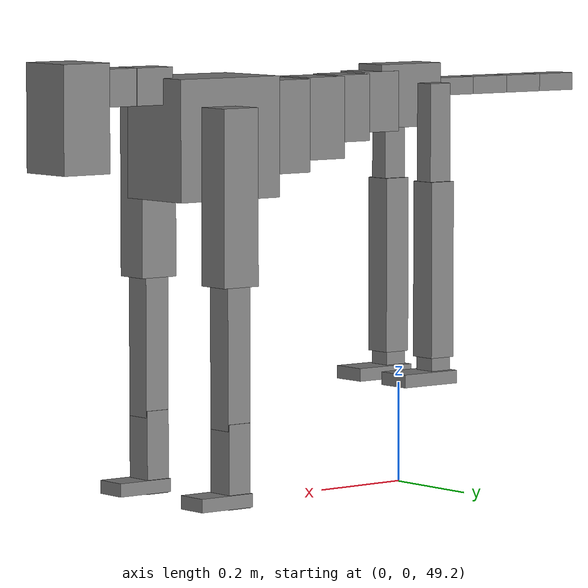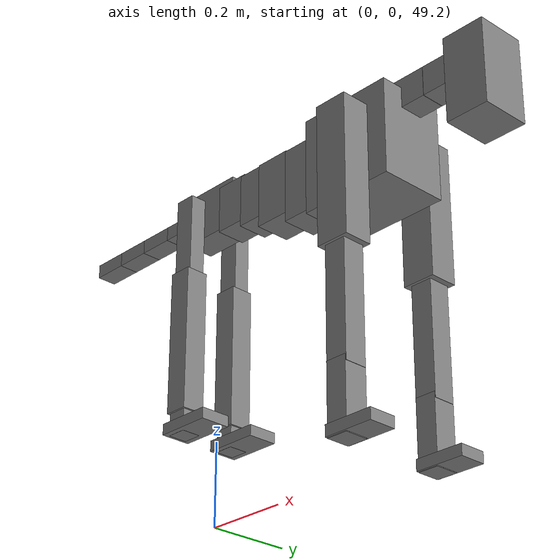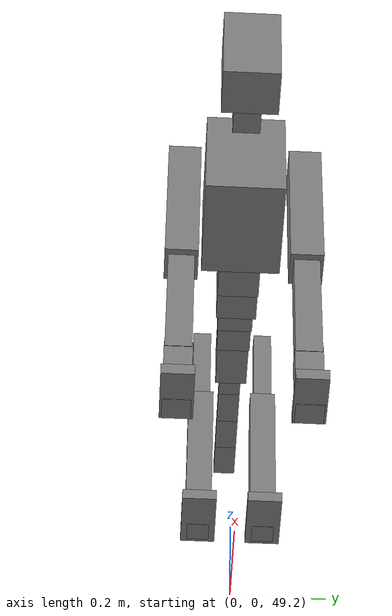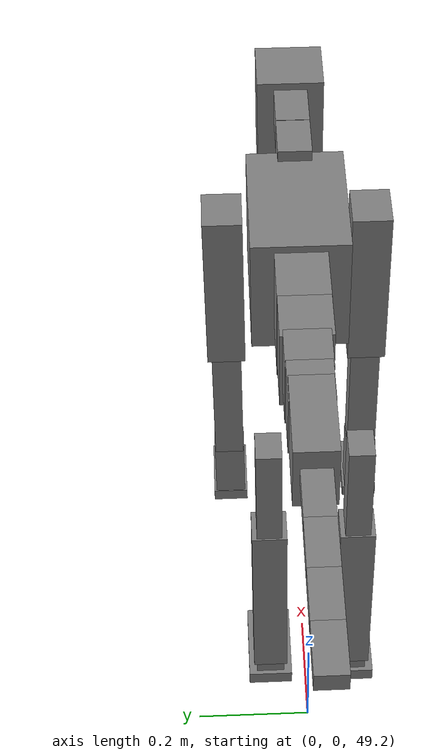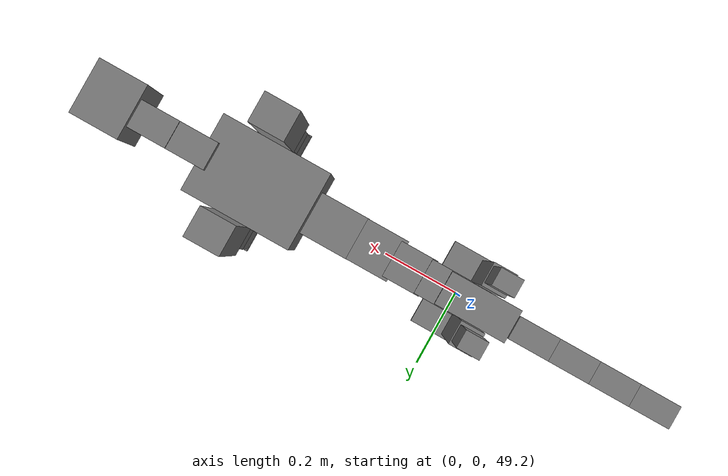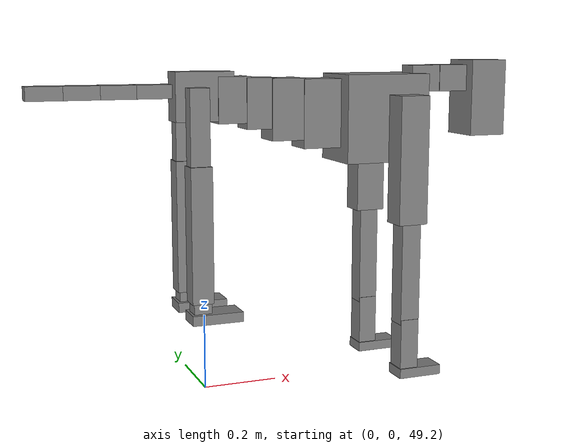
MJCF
<mujoco model="dog">

    <default>
        <joint armature="0.02" stiffness="1" damping="0.2" limited="true"/>
        <geom condim="3" friction="1 0.05 0.05" margin="0.01"/>
        <motor ctrllimited="true" ctrlrange="-1.0 1.0" forcelimited="true" gear="50"/>
    </default>

    <compiler inertiafromgeom="true" angle="radian"/>

    <option timestep="0.016" iterations="50" tolerance="1e-10" solver="Newton" jacobian="dense" cone="pyramidal"/>

    <size nconmax="20000" njmax="60000" nstack="5000000"/>
    <visual>
        <map force="0.1" zfar="30"/>
        <rgba haze="0.15 0.25 0.35 1"/>
        <quality shadowsize="2048"/>
        <global offwidth="800" offheight="800"/>
    </visual>

    <asset>
        <texture type="skybox" builtin="gradient" rgb1="0.3 0.5 0.7" rgb2="0 0 0" width="512" height="512"/>
        <texture name="texplane" type="2d" builtin="checker" rgb1=".2 .3 .4" rgb2=".1 0.15 0.2" width="512" height="512"
                 mark="cross" markrgb=".8 .8 .8"/>
        <texture name="texgeom" type="cube" builtin="flat" mark="cross" width="127" height="1278" rgb1="0.8 0.6 0.4"
                 rgb2="0.8 0.6 0.4" markrgb="1 1 1" random="0.01"/>

        <material name="matplane" reflectance="0.3" texture="texplane" texrepeat="1 1" texuniform="true"/>
        <material name="matgeom" texture="texgeom" texuniform="true" rgba="0.8 0.6 .4 1"/>
    </asset>

    <worldbody>
        <geom name="floor" pos="0 0 0" size="0 0 .25" type="plane" material="matplane" condim="3"/>

        <light directional="false" diffuse=".2 .2 .2" specular="0 0 0" pos="0 0 5" dir="0 0 -1" castshadow="false"/>
        <light mode="targetbodycom" target="torso" directional="false" diffuse=".8 .8 .8" specular="0.3 0.3 0.3"
               pos="0 0 4.0" dir="0 0 -1"/>

        <body name="root" pos="0 0 50">
            <freejoint name="root_1"/>
            <geom type="box" pos="0 0 -0.02" size="0.0774  0.0358  0.063" density="2030"/>

            <body name="spine1" pos="0.054 0 0">
                <joint name="spine1_y" axis="0 1 0" range="0 0.7" limited="true"/>
                <geom type="box" pos="0.02375 0 -0.03" size="0.04375  0.0375  0.05985" density="2030"/>

                <body name="spine2" pos="0.0612 0 0">
                    <joint name="spine2_y" axis="0 1 0" range="-0.15 0.15" limited="true"/>
                    <geom type="box" pos="0.03555  0  -0.04" size="0.04055  0.039  0.06615" density="2030"/>

                    <body name="spine3" pos="0.0730 0 0">
                        <joint name="spine3_y" axis="0 1 0" range="-0.15 0.15" limited="true"/>
                        <geom type="box" pos="0.03555  0  -0.057" size="0.04555  0.0445  0.081" density="2030"/>

                        <body name="spine4" pos="0.0780 0 0">
                            <joint name="spine4_y" axis="0 1 0" range="-0.15 0.15" limited="true"/>
                            <geom type="box" pos="0.05265  0  -0.07" size="0.05265  0.045  0.09135" density="2030"/>

                            <body name="torso" pos="0.1082 0 0">
                                <joint name="torso_y" axis="0 1 0" range="-0.15 0.15" limited="true"/>
                                <geom type="box" pos="0.11925  0  -0.085" size="0.11925  0.085  0.11745"
                                      density="2030"/>

                                <body name="neck1" pos="0.2160  0   0.0180">
                                    <joint name="neck1_y" axis="0 1 0" range="-1.2  -1" limited="true"/>
                                    <geom type="box" pos="0.0423  0  0" size="0.0423  0.03  0.036" density="2325"/>

                                    <body name="neck2" pos="0.0853  0  0">
                                        <joint name="neck2_y" axis="0 1 0" range="0.1  0" limited="true"/>
                                        <geom type="box" pos="0.0423  0  0" size="0.0423  0.03  0.036" density="2325"/>

                                        <body name="head" pos="0.0853  0  0">
                                            <joint name="head_y" axis="0 1 0" range="-0.3  -0.2" limited="true"/>
                                            <geom type="box" pos="0.0531  0  -0.055" size="0.0531  0.06  0.1044"
                                                  density="4030"/>

                                        </body>
                                    </body>
                                </body>

                                <body name="front_shoulder" pos="0.156  0   -0.0480">
                                    <joint name="front_shoulder_y" axis="0 1 0" range="-1 1.5" limited="true"/>
                                    <geom type="box" pos="0 0.13 -0.1438" size="0.0410  0.0350  0.1705" density="1158"/>
                                    <geom type="box" pos="0 -0.13 -0.1438" size="0.0410  0.0350  0.1705"
                                          density="1158"/>

                                    <body name="front_elbow" pos="0  0  -0.2876">
                                        <joint name="front_elbow_y" axis="0 1 0" range="-2 0" limited="true"/>
                                        <geom type="box" pos="0 0.13 -0.1507" size="0.0268  0.0274  0.1507"
                                              density="1081"/>
                                        <geom type="box" pos="0 -0.13 -0.1507" size="0.0268  0.0274  0.1507"
                                              density="1081"/>

                                        <body name="front_wrist" pos="0  0  -0.3013">
                                            <joint name="front_wrist_y" axis="0 1 0" range="-0.2 0" limited="true"/>
                                            <geom type="box" pos="0 0.13 -0.0688" size="0.0258  0.0287  0.0820"
                                                  density="1664"/>
                                            <geom type="box" pos="0 -0.13 -0.0688" size="0.0258  0.0287  0.0820"
                                                  density="1664"/>

                                            <body name="front_finger_end" pos="0  0  -0.1376">
                                                <joint name="front_finger_y" axis="0 1 0" range="-0.4 1"
                                                       limited="true"/>
                                                <geom type="box" pos="0.0331  0.13  0.0018"
                                                      size="0.0606  0.0331  0.0132" density="1515"/>
                                                <geom type="box" pos="0.0331  -0.13  0.0018"
                                                      size="0.0606  0.0331  0.0132" density="1515"/>

                                            </body>

                                        </body>
                                    </body>
                                </body>

                            </body>
                        </body>
                    </body>
                </body>
            </body>

            <body name="back_hip" pos="-0.03 0 -0.018">
                <joint name="back_hip_y" axis="0 1 0" range="-1.5 0.3" limited="true"/>
                <geom type="box" pos="0 0.07 -0.0943" size="0.0257  0.0201  0.1171" density="1154"/>
                <geom type="box" pos="0 -0.07 -0.0943" size="0.0257  0.0201  0.1171" density="1154"/>

                <body name="back_knee" pos="0  0  -0.1885">
                    <joint name="back_knee_y" axis="0 1 0" range="0 2.8" limited="true"/>
                    <geom type="box" pos="0 0.07 -0.1603" size="0.0284  0.0280  0.1759" density="1227"/>
                    <geom type="box" pos="0 -0.07 -0.1603" size="0.0284  0.0280  0.1759" density="1227"/>

                    <body name="back_ankle" pos="0  0  -0.3206">
                        <joint name="back_ankle_y" axis="0 1 0" range="-2.2 0" limited="true"/>
                        <geom type="box" pos="0 0.07 -0.0286" size="0.0234  0.0234  0.0399" density="1284"/>
                        <geom type="box" pos="0 -0.07 -0.0286" size="0.0234  0.0234  0.0399" density="1284"/>

                        <body name="back_toe_end" pos="0  0  -0.0572">
                            <joint name="back_toe_y" axis="0 1 0" range="-0.4 1" limited="true"/>
                            <geom type="box" pos="0.0366  0.07  0.0020" size="0.0671  0.0366  0.0130" density="1515"/>
                            <geom type="box" pos="0.0366  -0.07  0.0020" size="0.0671  0.0366  0.0130" density="1515"/>

                        </body>
                    </body>
                </body>
            </body>

            <body name="tail1" pos="-0.074 0 -0.006">
                <joint name="tail1_y" axis="0 1 0" range="-0.2 0.2" limited="true"/>
                <geom type="box" pos="-0.0536  0  0" size="0.045  0.025  0.0175" density="1587"/>

                <body name="tail2" pos="-0.09 0 0">
                    <joint name="tail2_y" axis="0 1 0" range="-0.2 0.2" limited="true"/>
                    <geom type="box" pos="-0.0536  0  0" size="0.045  0.025  0.0175" density="1587"/>

                    <body name="tail3" pos="-0.09 0 0">
                        <joint name="tail3_y" axis="0 1 0" range="-0.2 0.2" limited="true"/>
                        <geom type="box" pos="-0.0536  0  0" size="0.045  0.025  0.0175" density="1587"/>

                        <body name="tail4" pos="-0.09 0 0">
                            <joint name="tail4_y" axis="0 1 0" range="-0.2 0.2" limited="true"/>
                            <geom type="box" pos="-0.0536  0  0" size="0.045  0.025  0.0175" density="1587"/>

                        </body>
                    </body>
                </body>
            </body>
        </body>
    </worldbody>

    <actuator>
        <motor joint="spine1_y" forcerange="-150 150     "/>
        <motor joint="spine2_y" forcerange="-150 150     "/>
        <motor joint="spine3_y" forcerange="-150 150     "/>
        <motor joint="spine4_y" forcerange="-150 150     "/>
        <motor joint="torso_y" forcerange="-150 150     "/>
        <motor joint="neck1_y" forcerange="-100 100       "/>
        <motor joint="neck2_y" forcerange="-100 100       "/>
        <motor joint="head_y" forcerange="-150 150       "/>
        <motor joint="front_shoulder_y" forcerange="-179.03 154.55"/>
        <motor joint="front_elbow_y" forcerange="-168.92 130.44"/>
        <motor joint="front_wrist_y" forcerange="-105.95 123.25"/>
        <motor joint="front_finger_y" forcerange="-46.79 89.53"/>
        <motor joint="back_hip_y" forcerange="-243.52 225.08"/>
        <motor joint="back_knee_y" forcerange="-282.41 325.30"/>
        <motor joint="back_angle_y" forcerange="-68.71 205.07"/>
        <motor joint="back_toe_y" forcerange="-83.11 129.67"/>
        <motor joint="tail1_y" forcerange="-50 50     "/>
        <motor joint="tail2_y" forcerange="-50 50     "/>
        <motor joint="tail3_y" forcerange="-50 50     "/>
        <motor joint="tail4_y" forcerange="-50 50     "/>
    </actuator>
</mujoco>
